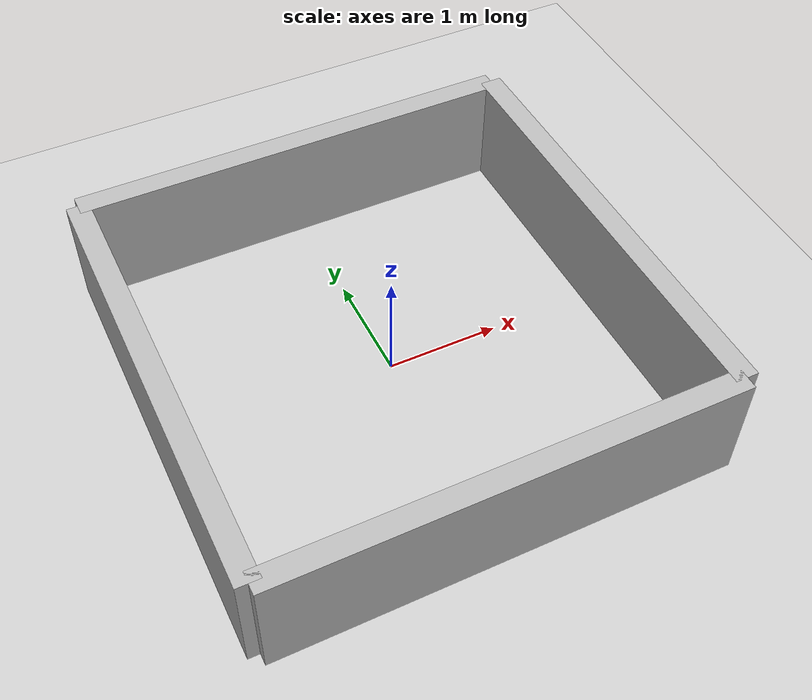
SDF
<sdf version="1.8">
 <world name="empty">
  <plugin filename="gz-sim-physics-system" name="gz::sim::systems::Physics"/>
  <plugin filename="gz-sim-sensors-system" name="gz::sim::systems::Sensors">
   <render_engine>ogre2</render_engine>
  </plugin>
  <plugin filename="gz-sim-scene-broadcaster-system" name="gz::sim::systems::SceneBroadcaster"/>
  <plugin filename="gz-sim-user-commands-system" name="gz::sim::systems::UserCommands"/>
  <plugin filename="gz-sim-wind-effects-system" name="gz::sim::systems::WindEffects">
   <force_approximation_scaling_factor>1</force_approximation_scaling_factor>
   <horizontal>
    <magnitude>
     <mean>5.0</mean>
     <time_for_rise>5</time_for_rise>
     <sin><amplitude_percent>0.1</amplitude_percent><period>60</period></sin>
     <noise type="gaussian"><mean>0.0</mean><stddev>0.2</stddev></noise>
    </magnitude>
    <direction>
     <time_for_rise>10.0</time_for_rise>
     <sin><amplitude>1.0</amplitude><period>20</period></sin>
     <noise type="gaussian"><mean>0.0</mean><stddev>0.03</stddev></noise>
    </direction>
   </horizontal>
   <vertical><mean>0.0</mean><noise type="gaussian"><mean>0.0</mean><stddev>0.0</stddev></noise></vertical>
  </plugin>
  <light name="sun" type="directional">
   <pose>0 0 10 0 0 0</pose>
   <diffuse>0.8 0.8 0.8 1</diffuse>
   <specular>0.2 0.2 0.2 1</specular>
   <attenuation>
    <range>1000</range>
    <constant>0.9</constant>
    <linear>0.01</linear>
    <quadratic>0.001</quadratic>
   </attenuation>
   <direction>-0.5 0.1 -0.9</direction>
  </light>
  <model name="ground_plane">
   <static>true</static>
   <link name="link">
    <collision name="collision">
     <geometry><plane><normal>0 0 1</normal><size>100 100</size></plane></geometry>
    </collision>
    <visual name="visual">
     <geometry><plane><normal>0 0 1</normal><size>100 100</size></plane></geometry>
     <material>
      <ambient>0.8 0.8 0.8 1</ambient>
      <diffuse>0.8 0.8 0.8 1</diffuse>
      <specular>0.8 0.8 0.8 1</specular>
     </material>
    </visual>
   </link>
  </model>
  <model name="wall1">
   <pose>2 0 0.5 0 0 0</pose>
   <static>true</static>
   <link name="link"><visual name="visual"><geometry><box><size>0.2 4 1</size></box></geometry></visual></link>
  </model>
  <model name="wall2">
   <pose>-2 0 0.5 0 0 0</pose>
   <static>true</static>
   <link name="link"><visual name="visual"><geometry><box><size>0.2 4 1</size></box></geometry></visual></link>
  </model>
  <model name="wall3">
   <pose>0 2 0.5 0 0 1.57</pose>
   <static>true</static>
   <link name="link"><visual name="visual"><geometry><box><size>0.2 4 1</size></box></geometry></visual></link>
  </model>
  <model name="wall4">
   <pose>0 -2 0.5 0 0 1.57</pose>
   <static>true</static>
   <link name="link"><visual name="visual"><geometry><box><size>0.2 4 1</size></box></geometry></visual></link>
  </model>
 </world>
</sdf>
